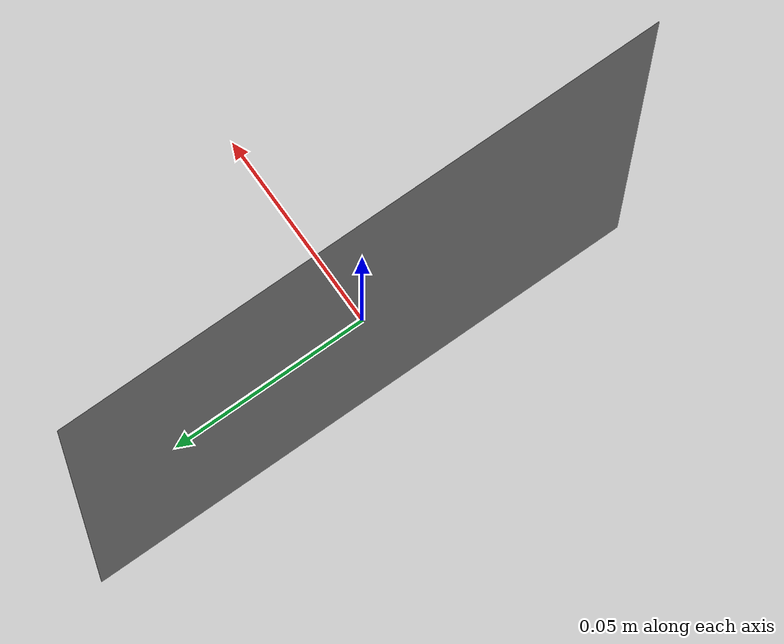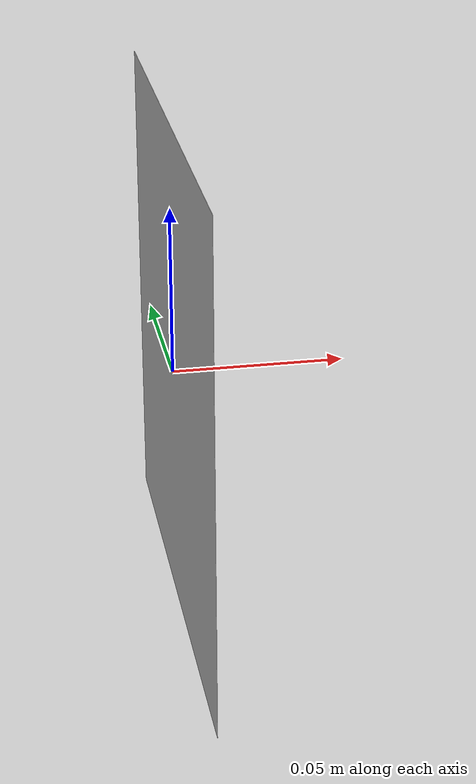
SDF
<?xml version="1.0"?>
<sdf version="1.6">
  <model name="qr_target">
    <static>true</static>
    <link name="link">
      <inertial>
        <pose>0 0 0 0 0 0</pose>
        <mass>0.001</mass>
        <inertia>
          <ixx>3.7499999999999997e-06</ixx>
          <ixy>0.0</ixy>
          <ixz>0.0</ixz>
          <iyy>1.8750008333333333e-06</iyy>
          <iyz>0.0</iyz>
          <izz>1.8750008333333333e-06</izz>
        </inertia>
      </inertial>
      <visual name="front_visual">
        <pose>0.00005 0 0 0 0 0</pose>
        <geometry>
          <box>
            <size>0.0001 0.15 0.15</size>
          </box>
        </geometry>
        <material>
          <script>
            <uri>model://qr_code_target/materials/scripts</uri>
            <uri>model://qr_code_target/materials/textures</uri>
            <name>target/Diffuse</name>
          </script>
        </material>
      </visual>
      <collision name="collision">
        <pose>0 0 0 0 0 0</pose>
        <geometry>
          <box>
            <size>0.0001 0.15 0.15</size>
          </box>
        </geometry>
      </collision>
    </link>
  </model>
</sdf>
